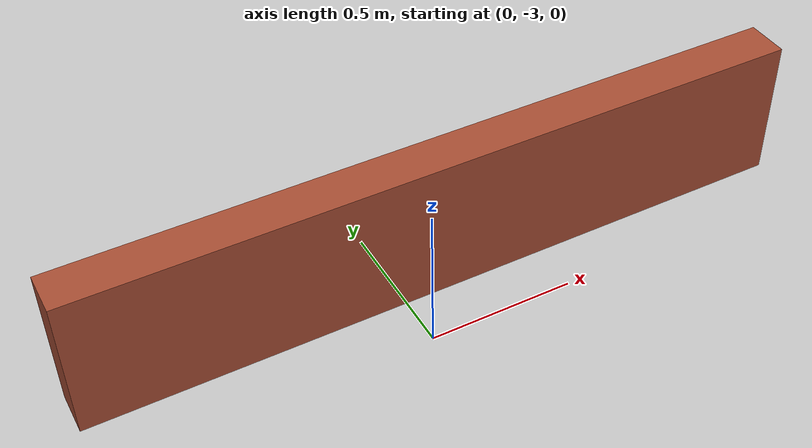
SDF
<?xml version='1.0'?>
<sdf version='1.7'>
  <model name='monu1'>
    <pose>0.175 -1.4125 0 0 -0 0</pose>
    <link name='Wall_0'>
      <collision name='Wall_0_Collision'>
        <geometry>
          <box>
            <size>2.5 0.15 0.5</size>
          </box>
        </geometry>
        <pose>0 0 0.25 0 -0 0</pose>
      </collision>
      <visual name='Wall_0_Visual'>
        <pose>0 0 0.25 0 -0 0</pose>
        <geometry>
          <box>
            <size>2.5 0.15 0.5</size>
          </box>
        </geometry>
        <material>
          <script>
            <uri>file://media/materials/scripts/gazebo.material</uri>
            <name>Gazebo/Bricks</name>
          </script>
          <ambient>1 1 1 1</ambient>
        </material>
        <meta>
          <layer>0</layer>
        </meta>
      </visual>
      <pose>0 -1.3375 0 0 -0 0</pose>
    </link>
    <static>1</static>
  </model>
</sdf>
